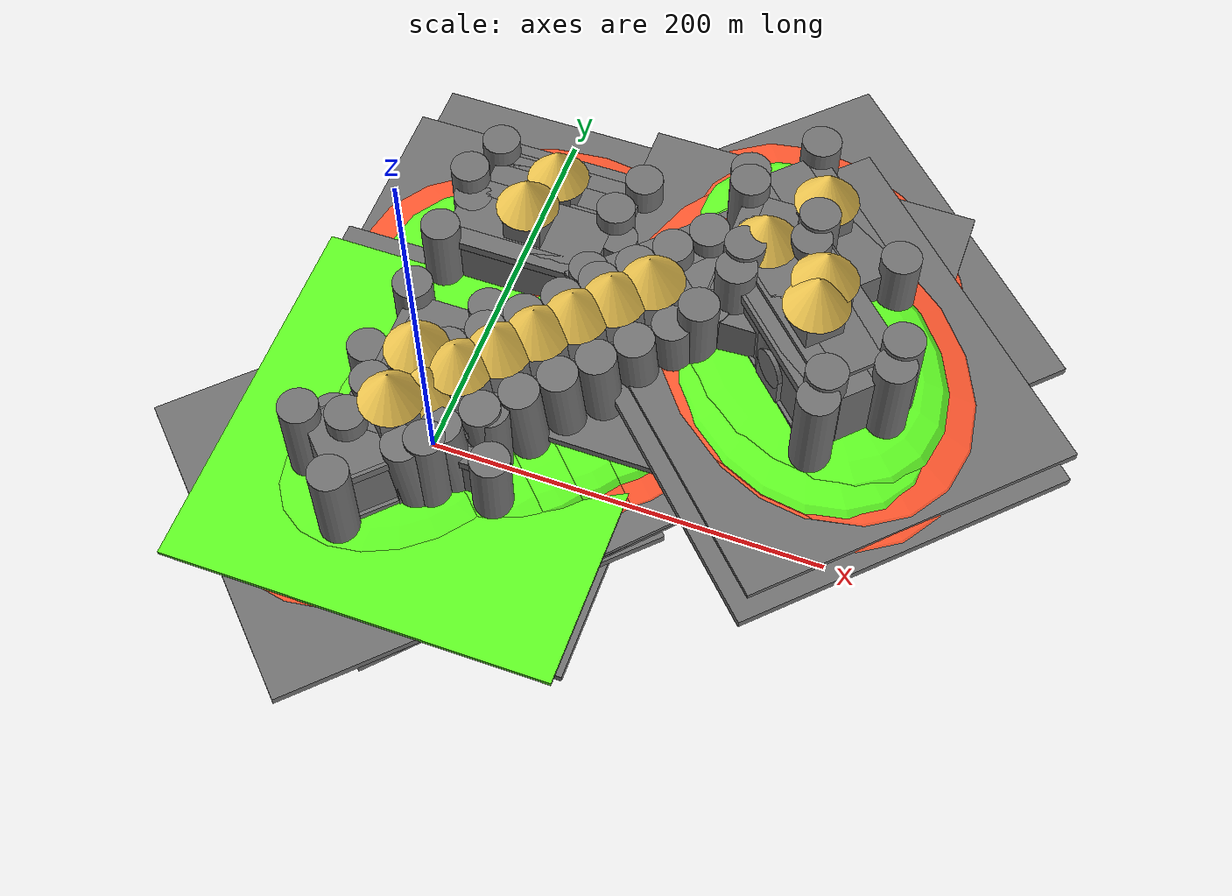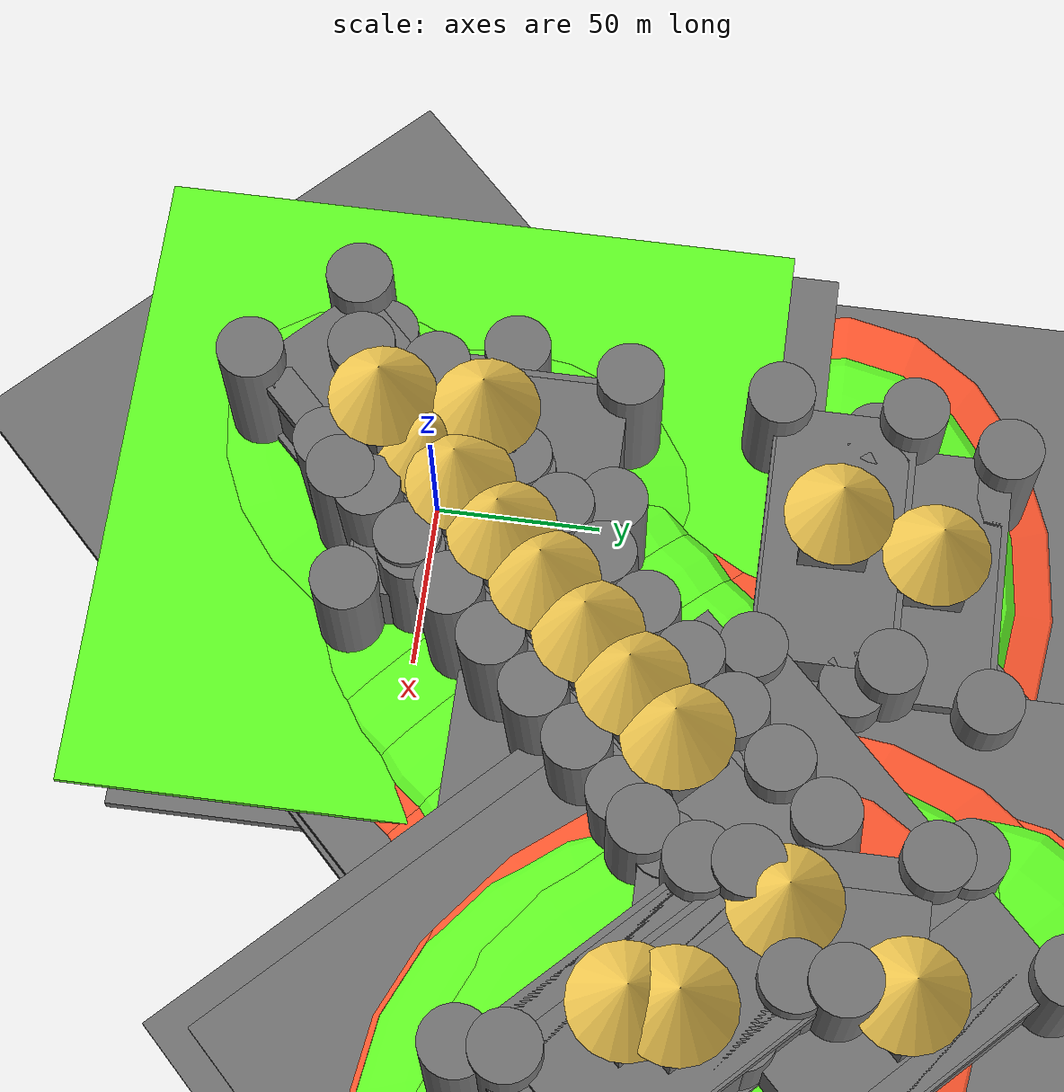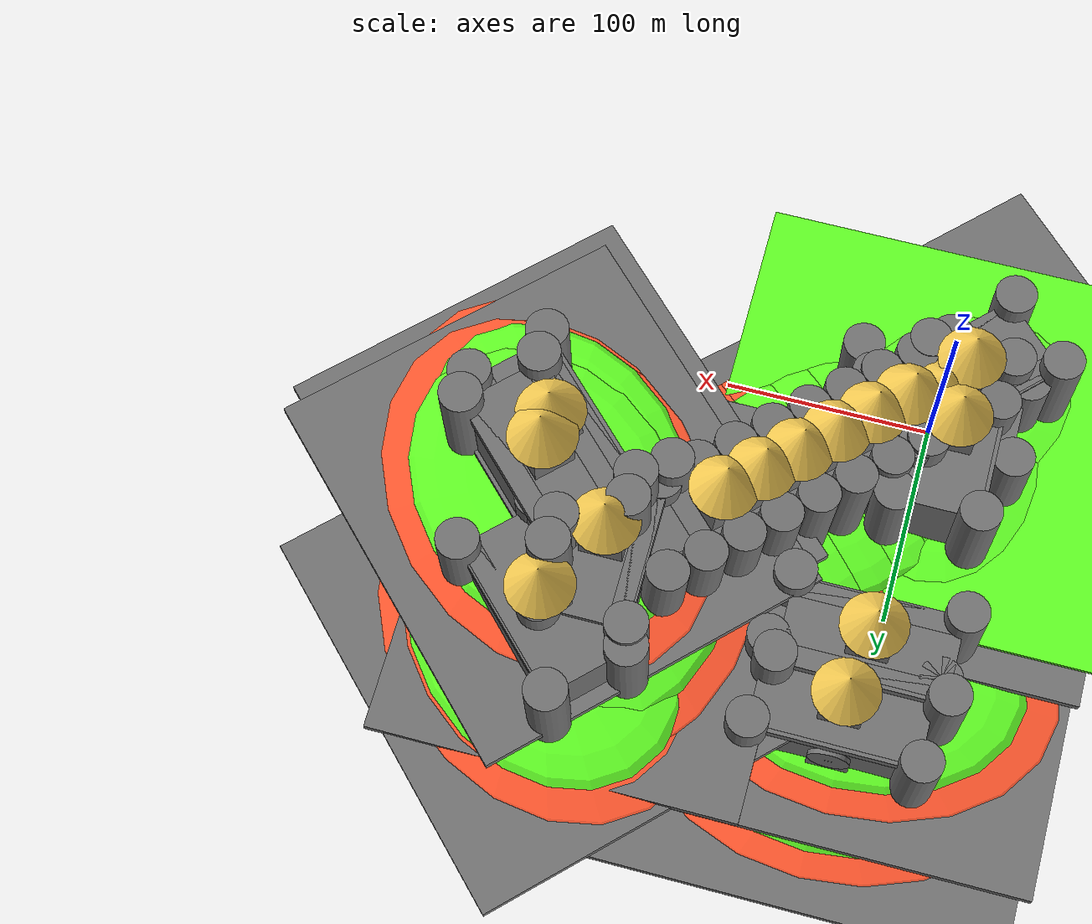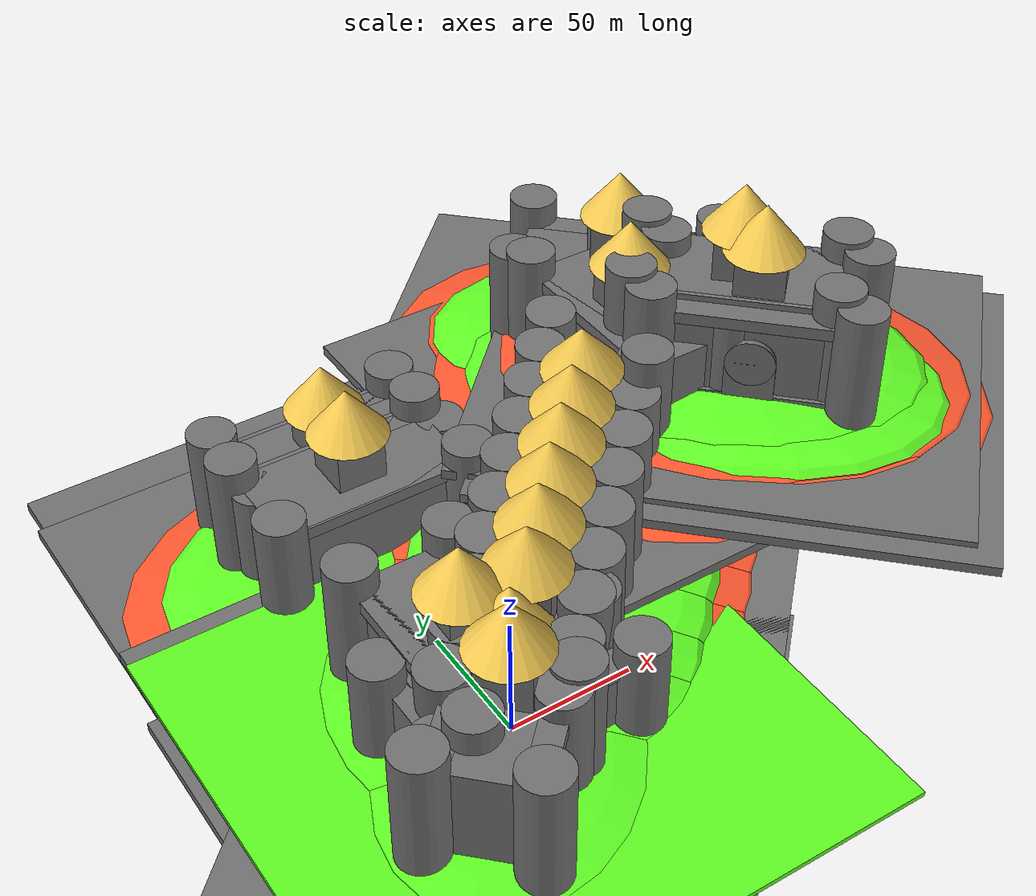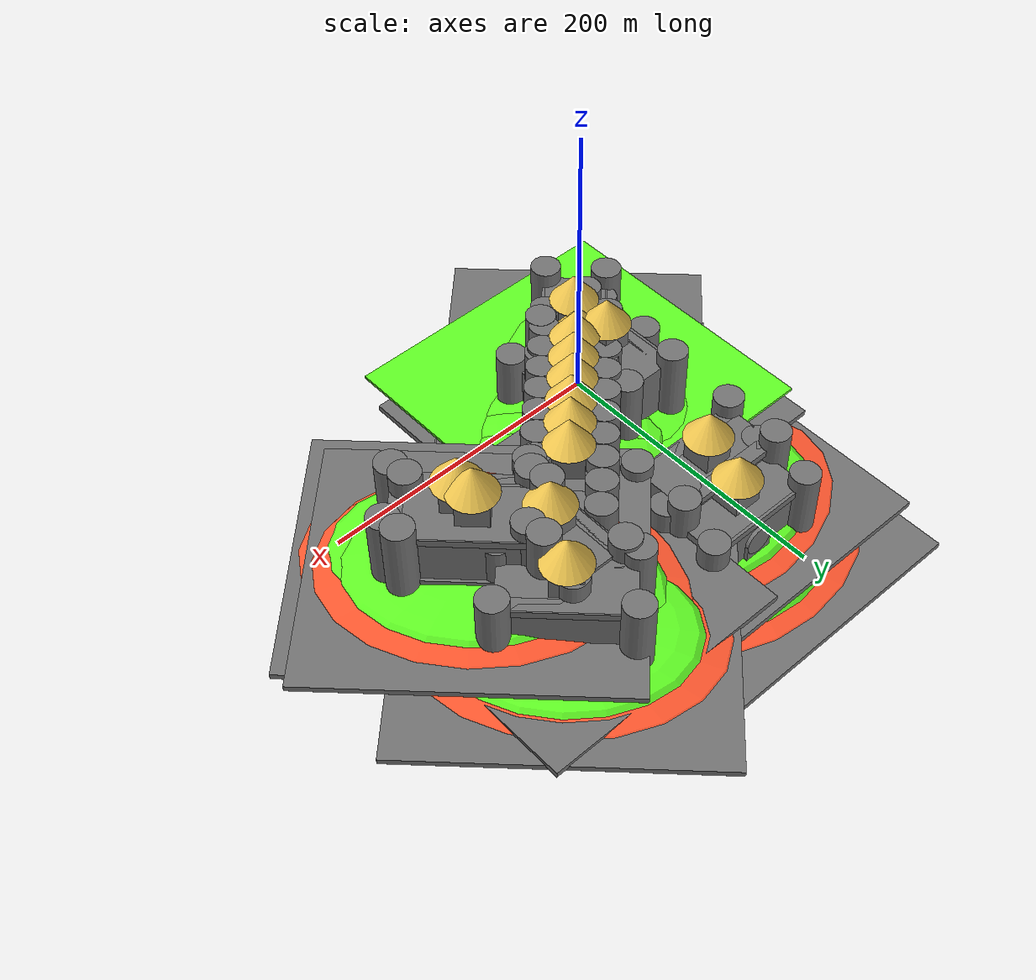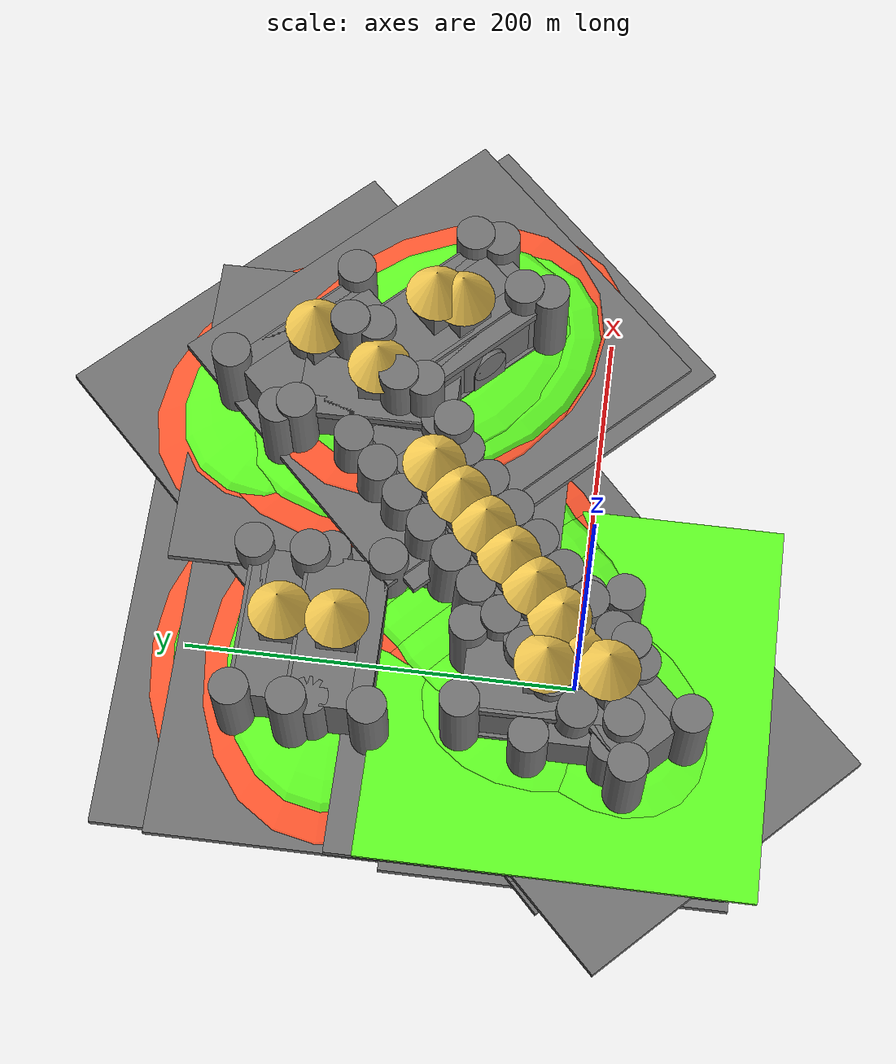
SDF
<sdf version='1.10'>
  <world name='potatoland'>
    <!-- Physics: realistic & consistent on basic machines -->
    <physics name="ode_cpu" type="ode">
      <!-- 500 Hz sim tick; good balance for CPU-only -->
      <max_step_size>0.002</max_step_size>
      <real_time_update_rate>500</real_time_update_rate>
      <real_time_factor>1.0</real_time_factor>
      <ode>
        <solver>
          <type>quick</type>
          <iters>50</iters>
          <sor>1.3</sor>
        </solver>
        <!-- Contact params tuned for stable, non-bouncy flips -->
        <constraints>
          <cfm>0.0</cfm>
          <erp>0.2</erp>
        </constraints>
      </ode>
    </physics>

    <plugin name='gz::sim::systems::Physics' filename='gz-sim-physics-system'/>
    <plugin name='gz::sim::systems::UserCommands' filename='gz-sim-user-commands-system'/>
    <plugin name='gz::sim::systems::SceneBroadcaster' filename='gz-sim-scene-broadcaster-system'/>
    <plugin name='gz::sim::systems::Contact' filename='gz-sim-contact-system'/>

     <!-- Earth gravity -->
    <gravity>0 0 -9.81</gravity>

    <magnetic_field>5.5644999999999998e-06 2.2875799999999999e-05 -4.2388400000000002e-05</magnetic_field>
    <atmosphere type='adiabatic'/>

    <!-- Lighting: simple, stable; shadows off by default -->
    <scene>
      <ambient>0.5 0.5 0.5 1</ambient>
      <background>0.7 0.7 0.75 1</background>
      <shadows>true</shadows>
    </scene>

    <!--Castle-->
    <include>
      <name>Castle</name>
      <uri>model://castle/model.sdf</uri>
      <pose>150 150 20 0 0 2.356</pose>
    </include>
    <!--End Castle-->

    <!--Dragon platform-->
    <model name="dragon_platform">
      <static>true</static>
      <include>
        <name>Animal_Planet_Foam_2Headed_Dragon</name>
        <uri>model://Animal_Planet_Foam_2Headed_Dragon/model.sdf</uri>
        <pose>130 115 22.5 0 0 -1.571</pose>
    </include>
    <!-- Scale included in the model.sdf file. Scaled to 75x the size-->
      <link name="link">
        <pose>130 115 22 0 0 0</pose>
        <collision name="col"><geometry><cylinder><radius>12</radius><length>1</length></cylinder></geometry></collision>
        <visual name="vis">
          <geometry><cylinder><radius>12</radius><length>1</length></cylinder></geometry>
          <material>
            <ambient>0.35 0.35 0.35 1</ambient>
            <diffuse>0.45 0.45 0.45 1</diffuse>
            <pbr>
              <metal>
                <albedo_map>model://textures/wood_textures/wood_texture_seamless_1x5.jpg</albedo_map>
                <roughness>0.9</roughness>
                <metalness>0.0</metalness>
              </metal>
            </pbr>
          </material>
        </visual>
      </link>
    </model>
    <!--End dragon platform-->

    <include>
      <name>Eagle</name>
      <uri>model://Schleich_Bald_Eagle/model.sdf</uri>
      <pose>165 90 40 0 0 2.356</pose>
    </include>

    <model name="branch">
      <static>true</static>
      <link name="link">
        <pose>165 90 37.5 0 1.571 -1.571</pose>
        <collision name="col">
          <geometry>
            <cylinder><radius>3</radius><length>20</length></cylinder>
          </geometry>
        </collision>
        <visual name="vis">
          <geometry>
            <cylinder><radius>3</radius><length>20</length></cylinder>
          </geometry>
          <material>
            <ambient>0.35 0.35 0.35 1</ambient>
            <diffuse>0.45 0.45 0.45 1</diffuse>
            <pbr>
              <metal>
                <albedo_map>model://textures/wood_textures/bark.jpeg</albedo_map>
                <roughness>0.9</roughness>
                <metalness>0.0</metalness>
              </metal>
            </pbr>
          </material>
        </visual>
      </link>
      <include>
        <name>Leaves</name>
        <uri>model://branch_leaves/model.sdf</uri>
        <pose>165 77 37.5 0 0 2.356</pose>
      </include>
    </model>

    <model name="road_main_castle">
      <pose>60 57 8 0 -0.087 0.785</pose>
      <include>
        <name>Road_1</name>
        <uri>model://road_yellow_double/model.sdf</uri>
        <pose>0 0 0 0 0 0</pose>
      </include>

      <include>
        <name>Road_2</name>
        <uri>model://road_yellow_double/model.sdf</uri>
        <pose>20 0 0 0 0 0</pose>
      </include>

      <include>
        <name>Road_3</name>
        <uri>model://road_yellow_double/model.sdf</uri>
        <pose>40 0 0 0 0 0</pose>
      </include>

      <include>
        <name>Road_4</name>
        <uri>model://road_yellow_double/model.sdf</uri>
        <pose>-20 0 0 0 0 0</pose>
      </include>

      <include>
        <name>Road_5</name>
        <uri>model://road_yellow_double/model.sdf</uri>
        <pose>-40 0 0 0 0 0</pose>
      </include>

      <include>
        <name>Road_6</name>
        <uri>model://road_yellow_double/model.sdf</uri>
        <pose>-60 0 0 0 0 0</pose>
      </include>
    </model>

    <!--Dino bot-->
    <include>
      <name>Dino Bot</name>
      <uri>model://Transformers_Age_of_Extinction_Stomp_and_Chomp_Grimlock_Figure/model.sdf</uri>
      <pose>-10 15 1 0 0 1.571</pose>
    </include>

    <!--DIno-->
    <include>
      <name>Theri</name>
      <uri>model://Schleich_Therizinosaurus_ln9cruulPqc/model.sdf</uri>
      <pose>-10 -15 1 0 0 -2.356</pose>
    </include>

    <!--Big 'ol shark-->
    <include>
      <name>Jaws</name>
      <uri>model://Weisshai_Great_White_Shark/model.sdf</uri>
      <pose>10 150 -20 0 0 0</pose>
    </include>

    <!--Fish boat-->
    <include>
      <name>Hunter Boat</name>
      <uri>model://Vessel_E/model.sdf</uri>
      <pose>5 120 -10 0 0 0</pose>
    </include>

    <!--Base ground-->
    <model name="ground">
      <static>true</static>
      <link name="link">
      <collision name="col">
        <geometry>
          <box><size>200 200 2</size></box>
        </geometry>
      </collision>

      <visual name="vis">
        <geometry>
          <box><size>200 200 2</size></box>
        </geometry>

        <material>
        <ambient>0.28 0.94 0.04 1</ambient>
        <diffuse>0.38 1 0.14 1</diffuse>
          <pbr>
            <metal>
              <albedo_map>model://textures/grass_textures/green_grass_seamless.jpg</albedo_map>
              <roughness>0.9</roughness>
              <metalness>0.0</metalness>
            </metal>
          </pbr>
        </material>
      </visual>
      </link>
    </model>

    <!-- This is the coast waves model stored in models/coast_waves_2 -->
    <include>
      <name>coast_waves_2</name>
      <uri>model://coast_waves_2/model.sdf</uri>
      <pose>0 0 -10 0 0 0</pose>
    </include>

    <light name='sun' type='directional'>
      <pose>0 0 10 0 0 0</pose>
      <cast_shadows>true</cast_shadows>
      <intensity>1</intensity>
      <direction>-0.5 0.10000000000000001 -0.90000000000000002</direction>
      <diffuse>0.800000012 0.800000012 0.800000012 1</diffuse>
      <specular>0.200000003 0.200000003 0.200000003 1</specular>
      <attenuation>
        <range>1000</range>
        <linear>0.01</linear>
        <constant>0.90000000000000002</constant>
        <quadratic>0.001</quadratic>
      </attenuation>
      <spot>
        <inner_angle>0</inner_angle>
        <outer_angle>0</outer_angle>
        <falloff>0</falloff>
      </spot>
    </light>
  </world>
</sdf>

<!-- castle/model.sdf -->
<sdf version="1.6">
  <model name="castle">
      <static>true</static>
        <link name="link_moat">
          <pose>0 0 -10 0 0 -1.571</pose>
          <collision name="col">
            <geometry>
              <ellipsoid>
                <radii>75 100 8</radii>
              </ellipsoid>
            </geometry>
          </collision>

          <visual name="vis">
            <geometry>
              <ellipsoid>
                <radii>75 100 8</radii>
              </ellipsoid>
            </geometry>

            <material>
              <ambient>1 0.24 0.08 1</ambient>
              <diffuse>1 0.34 0.18 1</diffuse>

              <pbr>
                <metal>
                  <albedo_map>textures/misc_textures/lava_5.jpeg</albedo_map>
                  <roughness>0.8</roughness>
                  <metalness>0.2</metalness>
                </metal>
              </pbr>
            </material>
          </visual>
        </link>

        <link name="link_ground">
        <pose>0 0 -5 0 0 -1.571</pose>
          <collision name="col">
            <geometry>
              <ellipsoid>
                <radii>60 80 8</radii>
              </ellipsoid>
            </geometry>
          </collision>

          <visual name="vis">
            <geometry>
              <ellipsoid>
                <radii>60 80 8</radii>
              </ellipsoid>
            </geometry>

            <material>
            <ambient>0.28 0.94 0.04 1</ambient>
            <diffuse>0.38 1 0.14 1</diffuse>

              <pbr>
                <metal>
                  <albedo_map>textures/grass_textures/green_grass_seamless.jpg</albedo_map>
                  <roughness>1</roughness>
                  <metalness>0.0</metalness>
                </metal>
              </pbr>
            </material>
          </visual>
        </link>

        <link name="link_bottom_ground">
          <pose>0 0 -10 0 0 0</pose>
          <collision name="col">
            <geometry><box><size>200 175 4</size></box></geometry>
          </collision>

          <visual name="vis">
            <geometry><box><size>200 175 4</size></box></geometry>

            <material>
              <ambient>0.35 0.35 0.35 1</ambient>
              <diffuse>0.45 0.45 0.45 1</diffuse>
              <pbr>
                <metal>
                  <albedo_map>textures/soil_textures/dirt.jpeg</albedo_map>
                  <roughness>1</roughness>
                  <metalness>0.0</metalness>
                </metal>
              </pbr>
            </material>
          </visual>
        </link>

        <link name="link_base">
        <pose>0 0 20 0 0 0</pose>
        <collision name="col"><geometry><box><size>40 80 40</size></box></geometry></collision>
        <visual name="vis">
          <geometry><box><size>80 40 40</size></box></geometry>
          <material>
            <ambient>0.35 0.35 0.35 1</ambient>
            <diffuse>0.45 0.45 0.45 1</diffuse>
            <!-- This tag and its contents add texture (an image) to our models -->
            <pbr>
              <metal>
                <!-- Point to your image -->
                <albedo_map>textures/stone_textures/stone_wall_seamless_2x1.jpg</albedo_map>
                <!-- Optional: roughness/metalness for a matte, non-metal look -->
                <roughness>0.9</roughness>
                <metalness>0.0</metalness>
              </metal>
            </pbr>
          </material>
        </visual>
      </link>

      <link name="link_tower1">
      <pose>-40 -20 25 0 0 0</pose>
        <collision name="col"><geometry><cylinder><radius>10</radius><length>50</length></cylinder></geometry></collision>
        <visual name="vis">
          <geometry><cylinder><radius>10</radius><length>50</length></cylinder></geometry>
          <material>
            <ambient>0.35 0.35 0.35 1</ambient>
            <diffuse>0.45 0.45 0.45 1</diffuse>
            <pbr>
              <metal>
                <albedo_map>textures/stone_textures/stone_wall_seamless_1x1.jpg</albedo_map>
                <roughness>0.9</roughness>
                <metalness>0.0</metalness>
              </metal>
            </pbr>
          </material>
        </visual>
      </link>

      <link name="link_tower2">
      <pose>-40 20 25 0 0 0</pose>
        <collision name="col"><geometry><cylinder><radius>10</radius><length>50</length></cylinder></geometry></collision>
        <visual name="vis">
          <geometry><cylinder><radius>10</radius><length>50</length></cylinder></geometry>
          <material>
            <ambient>0.35 0.35 0.35 1</ambient>
            <diffuse>0.45 0.45 0.45 1</diffuse>
            <pbr>
              <metal>
                <albedo_map>textures/stone_textures/stone_wall_seamless_1x1.jpg</albedo_map>
                <roughness>0.9</roughness>
                <metalness>0.0</metalness>
              </metal>
            </pbr>
          </material>
        </visual>
      </link>

      <link name="link_tower3">
      <pose>40 -20 25 0 0 0</pose>
        <collision name="col"><geometry><cylinder><radius>10</radius><length>50</length></cylinder></geometry></collision>
        <visual name="vis">
          <geometry><cylinder><radius>10</radius><length>50</length></cylinder></geometry>
          <material>
            <ambient>0.35 0.35 0.35 1</ambient>
            <diffuse>0.45 0.45 0.45 1</diffuse>
            <pbr>
              <metal>
                <albedo_map>textures/stone_textures/stone_wall_seamless_1x1.jpg</albedo_map>
                <roughness>0.9</roughness>
                <metalness>0.0</metalness>
              </metal>
            </pbr>
          </material>
        </visual>
      </link>

      <link name="link_tower4">
      <pose>40 20 25 0 0 0</pose>
        <collision name="col"><geometry><cylinder><radius>10</radius><length>50</length></cylinder></geometry></collision>
        <visual name="vis">
          <geometry><cylinder><radius>10</radius><length>50</length></cylinder></geometry>
          <material>
            <ambient>0.35 0.35 0.35 1</ambient>
            <diffuse>0.45 0.45 0.45 1</diffuse>
            <pbr>
              <metal>
                <albedo_map>textures/stone_textures/stone_wall_seamless_1x1.jpg</albedo_map>
                <roughness>0.9</roughness>
                <metalness>0.0</metalness>
              </metal>
            </pbr>
          </material>
        </visual>
      </link>

      <link name="link_trim1">
        <pose>0 17 2.5 0 0 0</pose>
        <collision name="col">
            <geometry>
                <box><size>80 10 5</size></box>
            </geometry>
        </collision>
        <visual name="vis">
            <geometry>
                <box><size>80 10 5</size></box>
            </geometry>
          <material>
            <ambient>0.35 0.35 0.35 1</ambient>
            <diffuse>0.45 0.45 0.45 1</diffuse>
            <pbr>
              <metal>
                <albedo_map>textures/stone_textures/stone_wall_seamless_2x1.jpg</albedo_map>
                <roughness>0.9</roughness>
                <metalness>0.0</metalness>
              </metal>
            </pbr>
          </material>
        </visual>
    </link>

    <link name="link_trim2">
        <pose> 0 -17 2.5 0 0 0</pose>
        <collision name="col">
            <geometry>
                <box><size>80 10 5</size></box>
            </geometry>
        </collision>
        <visual name="vis">
            <geometry>
                <box><size>80 10 5</size></box>
            </geometry>
            <material>
                <ambient>0.35 0.35 0.35 1</ambient>
                <diffuse>0.45 0.45 0.45 1</diffuse>
                <pbr>
                    <metal>
                        <albedo_map>textures/stone_textures/stone_wall_seamless_2x1.jpg</albedo_map>
                        <roughness>0.9</roughness>
                        <metalness>0.0</metalness>
                    </metal>
                </pbr>
            </material>
        </visual>
    </link>

    <link name="link_trim3">
        <pose>0 17 37.5 0 0 0</pose>
        <collision name="col">
            <geometry>
                <box><size>80 10 5</size></box>
            </geometry>
        </collision>
        <visual name="vis">
            <geometry>
                <box><size>80 10 5</size></box>
            </geometry>
          <material>
            <ambient>0.35 0.35 0.35 1</ambient>
            <diffuse>0.45 0.45 0.45 1</diffuse>
            <pbr>
              <metal>
                <albedo_map>textures/stone_textures/stone_wall_seamless_2x1.jpg</albedo_map>
                <roughness>0.9</roughness>
                <metalness>0.0</metalness>
              </metal>
            </pbr>
          </material>
        </visual>
    </link>

    <link name="link_trim4">
        <pose> 0 -16 37.5 0 0 0</pose>
        <collision name="col">
            <geometry>
                <box><size>80 10 5</size></box>
            </geometry>
        </collision>
        <visual name="vis">
            <geometry>
                <box><size>80 10 5</size></box>
            </geometry>
            <material>
                <ambient>0.35 0.35 0.35 1</ambient>
                <diffuse>0.45 0.45 0.45 1</diffuse>
                <pbr>
                    <metal>
                        <albedo_map>textures/stone_textures/stone_wall_seamless_2x1.jpg</albedo_map>
                        <roughness>0.9</roughness>
                        <metalness>0.0</metalness>
                    </metal>
                </pbr>
            </material>
        </visual>
    </link>

    <link name="link_middle_tower">
        <pose>0 0 30 0 0 0</pose>
        <collision name="col"><geometry><box><size>20 20 60</size></box></geometry></collision>
        <visual name="vis">
          <geometry><box><size>20 20 60</size></box></geometry>
          <material>
            <ambient>0.35 0.35 0.35 1</ambient>
            <diffuse>0.45 0.45 0.45 1</diffuse>
            <!-- This tag and its contents add texture (an image) to our models -->
            <pbr>
              <metal>
                <!-- Point to your image -->
                <albedo_map>textures/stone_textures/stone_wall_seamless_2x1.jpg</albedo_map>
                <!-- Optional: roughness/metalness for a matte, non-metal look -->
                <roughness>0.9</roughness>
                <metalness>0.0</metalness>
              </metal>
            </pbr>
          </material>
        </visual>
    </link>

    <link name="link_draw_bottom">
        <pose>0 20 10 0 0 0</pose>
        <collision name="col"><geometry><box><size>20 5 20</size></box></geometry></collision>
        <visual name="vis">
          <geometry><box><size>20 5 20</size></box></geometry>
          <material>
            <ambient>0.35 0.35 0.35 1</ambient>
            <diffuse>0.45 0.45 0.45 1</diffuse>
            <!-- This tag and its contents add texture (an image) to our models -->
            <pbr>
              <metal>
                <!-- Point to your image -->
                <albedo_map>textures/wood_textures/wood_texture_seamless_1x2.jpg</albedo_map>
                <!-- Optional: roughness/metalness for a matte, non-metal look -->
                <roughness>0.9</roughness>
                <metalness>0.0</metalness>
              </metal>
            </pbr>
          </material>
        </visual>
    </link>

    <link name="link_draw_top">
        <pose>0 20 20 1.571 0 0</pose>
        <collision name="col"><geometry><cylinder><radius>10</radius><length>5</length></cylinder></geometry></collision>
        <visual name="vis">
          <geometry><cylinder><radius>10</radius><length>5</length></cylinder></geometry>
          <material>
            <ambient>0.35 0.35 0.35 1</ambient>
            <diffuse>0.45 0.45 0.45 1</diffuse>
            <pbr>
              <metal>
                <albedo_map>model://textures/wood_textures/wood_texture_seamless_1x1.jpg</albedo_map>
                <roughness>0.9</roughness>
                <metalness>0.0</metalness>
              </metal>
            </pbr>
          </material>
        </visual>
    </link>

    <link name="link_tower_roof">
    <pose>0 0 68 0 0 0</pose>

        <collision name="col">
            <geometry>
                <cone>
                    <radius>16</radius>
                    <length>20</length>
                </cone>
            </geometry>
        </collision>

        <visual name="vis">
            <geometry>
                <cone>
                    <radius>16</radius>
                    <length>20</length>
                </cone>
            </geometry>
          <material>
            <ambient>1 0.73 0.24 1</ambient>
            <diffuse>1 0.83 0.34 1</diffuse>
            <pbr>
              <metal>
                <albedo_map>model://textures/wood_textures/wood_texture_seamless_1x10.jpg</albedo_map>
                <roughness>0.9</roughness>
                <metalness>0.0</metalness>
              </metal>
            </pbr>
          </material>
        </visual>
    </link>
  </model>
</sdf>
